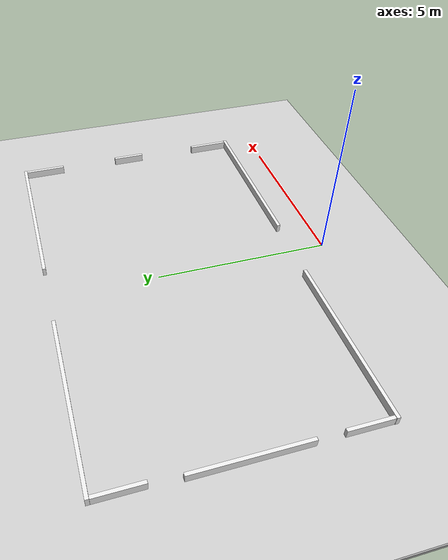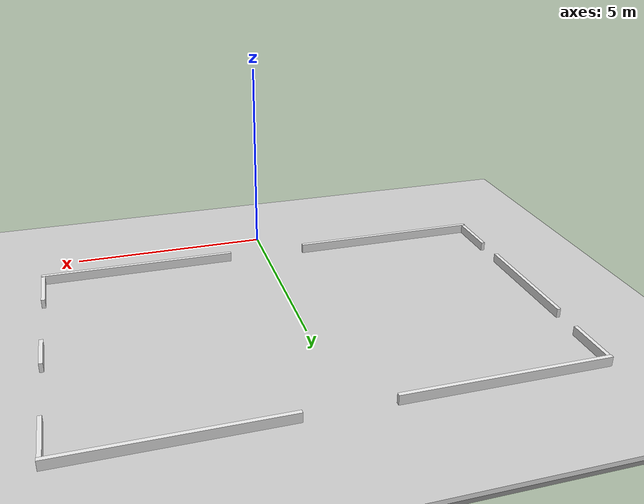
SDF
<sdf version="1.6">
 <world name="default">
  <plugin name="main" filename="3omni/build/libmain.so"/>
  <light name="sun" type="directional">
   <pose>0 0 10 0 -0 0</pose>
   <diffuse>0.8 0.8 0.8 1</diffuse>
   <specular>0.2 0.2 0.2 1</specular>
   <attenuation>
    <range>1000</range>
    <constant>0.9</constant>
    <linear>0.01</linear>
    <quadratic>0.001</quadratic>
   </attenuation>
   <direction>-0.5 0.1 -0.9</direction>
  </light>
  <model name="ground_plane">
   <static>1</static>
   <link name="link">
    <collision name="collision">
     <geometry><plane><normal>0 0 1</normal><size>100 100</size></plane></geometry>
     <surface>
      <contact><collide_bitmask>65535</collide_bitmask></contact>
      <friction><ode><mu>100</mu><mu2>50</mu2></ode></friction>
     </surface>
    </collision>
    <visual name="visual">
     <cast_shadows>0</cast_shadows>
     <geometry><plane><normal>0 0 1</normal><size>100 100</size></plane></geometry>
     <material>
      <script><uri>file://media/materials/scripts/gazebo.material</uri><name>Gazebo/Grey</name></script>
     </material>
    </visual>
   </link>
  </model>
  <gravity>0 0 -9.8</gravity>
  <magnetic_field>6e-06 2.3e-05 -4.2e-05</magnetic_field>
  <atmosphere type="adiabatic"/>
  <physics name="default_physics" default="0" type="ode">
   <max_step_size>0.01</max_step_size>
   <real_time_factor>1</real_time_factor>
   <real_time_update_rate>1000</real_time_update_rate>
  </physics>
  <scene><ambient>0.4 0.4 0.4 1</ambient><background>0.7 0.7 0.7 1</background><shadows>1</shadows></scene>
  <audio><device>default</device></audio>
  <spherical_coordinates>
   <surface_model>EARTH_WGS84</surface_model>
   <latitude_deg>0</latitude_deg>
   <longitude_deg>0</longitude_deg>
   <elevation>0</elevation>
   <heading_deg>0</heading_deg>
  </spherical_coordinates>
  <model name="blueprint">
   <link name="link_0_clone_1">
    <inertial>
     <mass>0.0001</mass>
     <inertia>
      <ixx>0.00309729</ixx>
      <ixy>0</ixy>
      <ixz>0</ixz>
      <iyy>0.415029</iyy>
      <iyz>0</iyz>
      <izz>0.412229</izz>
     </inertia>
    </inertial>
    <pose>3.48107 -2.97899 0.015598 0 -0 0</pose>
    <visual name="visual">
     <geometry><box><size>4.98576 0.094728 0.421739</size></box></geometry>
     <material>
      <lighting>1</lighting>
      <script><uri>file://media/materials/scripts/gazebo.material</uri><name>Gazebo/White</name></script>
      <shader type="pixel"/>
      <emissive>0 0 0 1</emissive>
     </material>
    </visual>
    <collision name="collision">
     <geometry><box><size>4.98576 0.094728 0.421739</size></box></geometry>
     <surface>
      <friction>
       <ode><mu>1</mu><mu2>1</mu2><fdir1>0 0 0</fdir1><slip1>0</slip1><slip2>0</slip2></ode>
       <torsional>
        <coefficient>1</coefficient>
        <patch_radius>0</patch_radius>
        <surface_radius>0</surface_radius>
        <use_patch_radius>1</use_patch_radius>
        <ode><slip>0</slip></ode>
       </torsional>
      </friction>
      <bounce><restitution_coefficient>0</restitution_coefficient><threshold>1e+06</threshold></bounce>
      <contact>
       <collide_without_contact>0</collide_without_contact>
       <collide_without_contact_bitmask>1</collide_without_contact_bitmask>
       <collide_bitmask>1</collide_bitmask>
       <ode>
        <soft_cfm>0</soft_cfm>
        <soft_erp>0.2</soft_erp>
        <kp>1e+13</kp>
        <kd>1</kd>
        <max_vel>0.01</max_vel>
        <min_depth>0</min_depth>
       </ode>
       <bullet>
        <split_impulse>1</split_impulse>
        <split_impulse_penetration_threshold>-0.01</split_impulse_penetration_threshold>
        <soft_cfm>0</soft_cfm>
        <soft_erp>0.2</soft_erp>
        <kp>1e+13</kp>
        <kd>1</kd>
       </bullet>
      </contact>
     </surface>
    </collision>
   </link>
   <link name="link_0_clone_1_clone">
    <inertial>
     <mass>0.0001</mass>
     <inertia>
      <ixx>0.00309729</ixx>
      <ixy>0</ixy>
      <ixz>0</ixz>
      <iyy>0.415029</iyy>
      <iyz>0</iyz>
      <izz>0.412229</izz>
     </inertia>
    </inertial>
    <pose>3.48028 4.0921 0.015598 0 -0 0</pose>
    <visual name="visual">
     <geometry><box><size>4.98576 0.094728 0.421739</size></box></geometry>
     <material>
      <lighting>1</lighting>
      <script><uri>file://media/materials/scripts/gazebo.material</uri><name>Gazebo/White</name></script>
      <shader type="pixel"/>
      <emissive>0 0 0 1</emissive>
     </material>
    </visual>
    <collision name="collision">
     <geometry><box><size>4.98576 0.094728 0.421739</size></box></geometry>
     <surface>
      <friction>
       <ode><mu>1</mu><mu2>1</mu2><fdir1>0 0 0</fdir1><slip1>0</slip1><slip2>0</slip2></ode>
       <torsional>
        <coefficient>1</coefficient>
        <patch_radius>0</patch_radius>
        <surface_radius>0</surface_radius>
        <use_patch_radius>1</use_patch_radius>
        <ode><slip>0</slip></ode>
       </torsional>
      </friction>
      <bounce><restitution_coefficient>0</restitution_coefficient><threshold>1e+06</threshold></bounce>
      <contact>
       <collide_without_contact>0</collide_without_contact>
       <collide_without_contact_bitmask>1</collide_without_contact_bitmask>
       <collide_bitmask>1</collide_bitmask>
       <ode>
        <soft_cfm>0</soft_cfm>
        <soft_erp>0.2</soft_erp>
        <kp>1e+13</kp>
        <kd>1</kd>
        <max_vel>0.01</max_vel>
        <min_depth>0</min_depth>
       </ode>
       <bullet>
        <split_impulse>1</split_impulse>
        <split_impulse_penetration_threshold>-0.01</split_impulse_penetration_threshold>
        <soft_cfm>0</soft_cfm>
        <soft_erp>0.2</soft_erp>
        <kp>1e+13</kp>
        <kd>1</kd>
       </bullet>
      </contact>
     </surface>
    </collision>
   </link>
   <link name="link_0_clone_1_clone_0">
    <inertial>
     <mass>0.0001</mass>
     <inertia>
      <ixx>0.00309729</ixx>
      <ixy>0</ixy>
      <ixz>0</ixz>
      <iyy>0.415029</iyy>
      <iyz>0</iyz>
      <izz>0.412229</izz>
     </inertia>
    </inertial>
    <pose>-3.52662 -2.91633 0.015598 0 -0 0</pose>
    <visual name="visual">
     <geometry><box><size>4.98576 0.094728 0.421739</size></box></geometry>
     <material>
      <lighting>1</lighting>
      <script><uri>file://media/materials/scripts/gazebo.material</uri><name>Gazebo/White</name></script>
      <shader type="pixel"/>
      <emissive>0 0 0 1</emissive>
     </material>
    </visual>
    <collision name="collision">
     <geometry><box><size>4.98576 0.094728 0.421739</size></box></geometry>
     <surface>
      <friction>
       <ode><mu>1</mu><mu2>1</mu2><fdir1>0 0 0</fdir1><slip1>0</slip1><slip2>0</slip2></ode>
       <torsional>
        <coefficient>1</coefficient>
        <patch_radius>0</patch_radius>
        <surface_radius>0</surface_radius>
        <use_patch_radius>1</use_patch_radius>
        <ode><slip>0</slip></ode>
       </torsional>
      </friction>
      <bounce><restitution_coefficient>0</restitution_coefficient><threshold>1e+06</threshold></bounce>
      <contact>
       <collide_without_contact>0</collide_without_contact>
       <collide_without_contact_bitmask>1</collide_without_contact_bitmask>
       <collide_bitmask>1</collide_bitmask>
       <ode>
        <soft_cfm>0</soft_cfm>
        <soft_erp>0.2</soft_erp>
        <kp>1e+13</kp>
        <kd>1</kd>
        <max_vel>0.01</max_vel>
        <min_depth>0</min_depth>
       </ode>
       <bullet>
        <split_impulse>1</split_impulse>
        <split_impulse_penetration_threshold>-0.01</split_impulse_penetration_threshold>
        <soft_cfm>0</soft_cfm>
        <soft_erp>0.2</soft_erp>
        <kp>1e+13</kp>
        <kd>1</kd>
       </bullet>
      </contact>
     </surface>
    </collision>
   </link>
   <link name="link_0_clone_1_clone_clone">
    <inertial>
     <mass>0.0001</mass>
     <inertia>
      <ixx>0.00309729</ixx>
      <ixy>0</ixy>
      <ixz>0</ixz>
      <iyy>0.415029</iyy>
      <iyz>0</iyz>
      <izz>0.412229</izz>
     </inertia>
    </inertial>
    <pose>-3.51109 4.10317 0.015598 0 -0 0</pose>
    <visual name="visual">
     <geometry><box><size>4.98576 0.094728 0.421739</size></box></geometry>
     <material>
      <lighting>1</lighting>
      <script><uri>file://media/materials/scripts/gazebo.material</uri><name>Gazebo/White</name></script>
      <shader type="pixel"/>
      <emissive>0 0 0 1</emissive>
     </material>
    </visual>
    <collision name="collision">
     <geometry><box><size>4.98576 0.094728 0.421739</size></box></geometry>
     <surface>
      <friction>
       <ode><mu>1</mu><mu2>1</mu2><fdir1>0 0 0</fdir1><slip1>0</slip1><slip2>0</slip2></ode>
       <torsional>
        <coefficient>1</coefficient>
        <patch_radius>0</patch_radius>
        <surface_radius>0</surface_radius>
        <use_patch_radius>1</use_patch_radius>
        <ode><slip>0</slip></ode>
       </torsional>
      </friction>
      <bounce><restitution_coefficient>0</restitution_coefficient><threshold>1e+06</threshold></bounce>
      <contact>
       <collide_without_contact>0</collide_without_contact>
       <collide_without_contact_bitmask>1</collide_without_contact_bitmask>
       <collide_bitmask>1</collide_bitmask>
       <ode>
        <soft_cfm>0</soft_cfm>
        <soft_erp>0.2</soft_erp>
        <kp>1e+13</kp>
        <kd>1</kd>
        <max_vel>0.01</max_vel>
        <min_depth>0</min_depth>
       </ode>
       <bullet>
        <split_impulse>1</split_impulse>
        <split_impulse_penetration_threshold>-0.01</split_impulse_penetration_threshold>
        <soft_cfm>0</soft_cfm>
        <soft_erp>0.2</soft_erp>
        <kp>1e+13</kp>
        <kd>1</kd>
       </bullet>
      </contact>
     </surface>
    </collision>
   </link>
   <link name="link_0_clone_clone_1">
    <inertial>
     <mass>0.0001</mass>
     <inertia>
      <ixx>0.000621208</ixx>
      <ixy>0</ixy>
      <ixz>0</ixz>
      <iyy>0.00619212</iyy>
      <iyz>0</iyz>
      <izz>0.00563879</izz>
     </inertia>
    </inertial>
    <pose>5.92227 -2.32231 0.019338 0 0 -1.5637</pose>
    <visual name="visual">
     <geometry><box><size>1.21731 0.094728 0.394038</size></box></geometry>
     <material>
      <lighting>1</lighting>
      <script><uri>file://media/materials/scripts/gazebo.material</uri><name>Gazebo/White</name></script>
      <shader type="vertex"><normal_map>__default__</normal_map></shader>
      <emissive>0 0 0 1</emissive>
     </material>
    </visual>
    <collision name="collision">
     <geometry><box><size>1.21731 0.094728 0.394038</size></box></geometry>
     <surface>
      <friction>
       <ode><mu>1</mu><mu2>1</mu2><fdir1>0 0 0</fdir1><slip1>0</slip1><slip2>0</slip2></ode>
       <torsional>
        <coefficient>1</coefficient>
        <patch_radius>0</patch_radius>
        <surface_radius>0</surface_radius>
        <use_patch_radius>1</use_patch_radius>
        <ode><slip>0</slip></ode>
       </torsional>
      </friction>
      <bounce><restitution_coefficient>0</restitution_coefficient><threshold>1e+06</threshold></bounce>
      <contact>
       <collide_without_contact>0</collide_without_contact>
       <collide_without_contact_bitmask>1</collide_without_contact_bitmask>
       <collide_bitmask>1</collide_bitmask>
       <ode>
        <soft_cfm>0</soft_cfm>
        <soft_erp>0.2</soft_erp>
        <kp>1e+13</kp>
        <kd>1</kd>
        <max_vel>0.01</max_vel>
        <min_depth>0</min_depth>
       </ode>
       <bullet>
        <split_impulse>1</split_impulse>
        <split_impulse_penetration_threshold>-0.01</split_impulse_penetration_threshold>
        <soft_cfm>0</soft_cfm>
        <soft_erp>0.2</soft_erp>
        <kp>1e+13</kp>
        <kd>1</kd>
       </bullet>
      </contact>
     </surface>
    </collision>
   </link>
   <link name="link_0_clone_clone_1_clone">
    <inertial>
     <mass>0.0001</mass>
     <inertia>
      <ixx>0.000621208</ixx>
      <ixy>0</ixy>
      <ixz>0</ixz>
      <iyy>0.00619212</iyy>
      <iyz>0</iyz>
      <izz>0.00563879</izz>
     </inertia>
    </inertial>
    <pose>-5.96782 -2.26025 0.019338 0 0 -1.5637</pose>
    <visual name="visual">
     <geometry><box><size>1.21731 0.094728 0.394038</size></box></geometry>
     <material>
      <lighting>1</lighting>
      <script><uri>file://media/materials/scripts/gazebo.material</uri><name>Gazebo/White</name></script>
      <shader type="vertex"><normal_map>__default__</normal_map></shader>
      <emissive>0 0 0 1</emissive>
     </material>
    </visual>
    <collision name="collision">
     <geometry><box><size>1.21731 0.094728 0.394038</size></box></geometry>
     <surface>
      <friction>
       <ode><mu>1</mu><mu2>1</mu2><fdir1>0 0 0</fdir1><slip1>0</slip1><slip2>0</slip2></ode>
       <torsional>
        <coefficient>1</coefficient>
        <patch_radius>0</patch_radius>
        <surface_radius>0</surface_radius>
        <use_patch_radius>1</use_patch_radius>
        <ode><slip>0</slip></ode>
       </torsional>
      </friction>
      <bounce><restitution_coefficient>0</restitution_coefficient><threshold>1e+06</threshold></bounce>
      <contact>
       <collide_without_contact>0</collide_without_contact>
       <collide_without_contact_bitmask>1</collide_without_contact_bitmask>
       <collide_bitmask>1</collide_bitmask>
       <ode>
        <soft_cfm>0</soft_cfm>
        <soft_erp>0.2</soft_erp>
        <kp>1e+13</kp>
        <kd>1</kd>
        <max_vel>0.01</max_vel>
        <min_depth>0</min_depth>
       </ode>
       <bullet>
        <split_impulse>1</split_impulse>
        <split_impulse_penetration_threshold>-0.01</split_impulse_penetration_threshold>
        <soft_cfm>0</soft_cfm>
        <soft_erp>0.2</soft_erp>
        <kp>1e+13</kp>
        <kd>1</kd>
       </bullet>
      </contact>
     </surface>
    </collision>
   </link>
   <link name="link_0_clone_clone_1_clone_0">
    <inertial>
     <mass>0.0001</mass>
     <inertia>
      <ixx>0.000489719</ixx>
      <ixy>0</ixy>
      <ixz>0</ixz>
      <iyy>0.00320892</iyy>
      <iyz>0</iyz>
      <izz>0.00277272</izz>
     </inertia>
    </inertial>
    <pose>5.93722 0.55998 0.019338 0 0 -1.5637</pose>
    <visual name="visual">
     <geometry><box><size>0.959649 0.094728 0.394038</size></box></geometry>
     <material>
      <lighting>1</lighting>
      <script><uri>file://media/materials/scripts/gazebo.material</uri><name>Gazebo/White</name></script>
      <shader type="vertex"><normal_map>__default__</normal_map></shader>
     </material>
    </visual>
    <collision name="collision">
     <geometry><box><size>0.959649 0.094728 0.394038</size></box></geometry>
     <surface>
      <friction>
       <ode><mu>1</mu><mu2>1</mu2><fdir1>0 0 0</fdir1><slip1>0</slip1><slip2>0</slip2></ode>
       <torsional>
        <coefficient>1</coefficient>
        <patch_radius>0</patch_radius>
        <surface_radius>0</surface_radius>
        <use_patch_radius>1</use_patch_radius>
        <ode><slip>0</slip></ode>
       </torsional>
      </friction>
      <bounce><restitution_coefficient>0</restitution_coefficient><threshold>1e+06</threshold></bounce>
      <contact>
       <collide_without_contact>0</collide_without_contact>
       <collide_without_contact_bitmask>1</collide_without_contact_bitmask>
       <collide_bitmask>1</collide_bitmask>
       <ode>
        <soft_cfm>0</soft_cfm>
        <soft_erp>0.2</soft_erp>
        <kp>1e+13</kp>
        <kd>1</kd>
        <max_vel>0.01</max_vel>
        <min_depth>0</min_depth>
       </ode>
       <bullet>
        <split_impulse>1</split_impulse>
        <split_impulse_penetration_threshold>-0.01</split_impulse_penetration_threshold>
        <soft_cfm>0</soft_cfm>
        <soft_erp>0.2</soft_erp>
        <kp>1e+13</kp>
        <kd>1</kd>
       </bullet>
      </contact>
     </surface>
    </collision>
   </link>
   <link name="link_0_clone_clone_1_clone_1">
    <inertial>
     <mass>0.0001</mass>
     <inertia>
      <ixx>0.000621208</ixx>
      <ixy>0</ixy>
      <ixz>0</ixz>
      <iyy>0.00619212</iyy>
      <iyz>0</iyz>
      <izz>0.00563879</izz>
     </inertia>
    </inertial>
    <pose>5.92147 3.43729 0.019338 0 0 -1.5637</pose>
    <visual name="visual">
     <geometry><box><size>1.21731 0.094728 0.394038</size></box></geometry>
     <material>
      <lighting>1</lighting>
      <script><uri>file://media/materials/scripts/gazebo.material</uri><name>Gazebo/White</name></script>
      <shader type="vertex"><normal_map>__default__</normal_map></shader>
      <emissive>0 0 0 1</emissive>
     </material>
    </visual>
    <collision name="collision">
     <geometry><box><size>1.21731 0.094728 0.394038</size></box></geometry>
     <surface>
      <friction>
       <ode><mu>1</mu><mu2>1</mu2><fdir1>0 0 0</fdir1><slip1>0</slip1><slip2>0</slip2></ode>
       <torsional>
        <coefficient>1</coefficient>
        <patch_radius>0</patch_radius>
        <surface_radius>0</surface_radius>
        <use_patch_radius>1</use_patch_radius>
        <ode><slip>0</slip></ode>
       </torsional>
      </friction>
      <bounce><restitution_coefficient>0</restitution_coefficient><threshold>1e+06</threshold></bounce>
      <contact>
       <collide_without_contact>0</collide_without_contact>
       <collide_without_contact_bitmask>1</collide_without_contact_bitmask>
       <collide_bitmask>1</collide_bitmask>
       <ode>
        <soft_cfm>0</soft_cfm>
        <soft_erp>0.2</soft_erp>
        <kp>1e+13</kp>
        <kd>1</kd>
        <max_vel>0.01</max_vel>
        <min_depth>0</min_depth>
       </ode>
       <bullet>
        <split_impulse>1</split_impulse>
        <split_impulse_penetration_threshold>-0.01</split_impulse_penetration_threshold>
        <soft_cfm>0</soft_cfm>
        <soft_erp>0.2</soft_erp>
        <kp>1e+13</kp>
        <kd>1</kd>
       </bullet>
      </contact>
     </surface>
    </collision>
   </link>
   <link name="link_0_clone_clone_1_clone_clone">
    <inertial>
     <mass>0.0001</mass>
     <inertia>
      <ixx>0.00154339</ixx>
      <ixy>0</ixy>
      <ixz>0</ixz>
      <iyy>0.0874153</iyy>
      <iyz>0</iyz>
      <izz>0.0860405</izz>
     </inertia>
    </inertial>
    <pose>-5.9956 0.55872 0.019338 0 0 -1.5637</pose>
    <visual name="visual">
     <geometry><box><size>3.02441 0.094728 0.394038</size></box></geometry>
     <material>
      <lighting>1</lighting>
      <script><uri>file://media/materials/scripts/gazebo.material</uri><name>Gazebo/White</name></script>
      <shader type="vertex"><normal_map>__default__</normal_map></shader>
     </material>
    </visual>
    <collision name="collision">
     <geometry><box><size>3.02441 0.094728 0.394038</size></box></geometry>
     <surface>
      <friction>
       <ode><mu>1</mu><mu2>1</mu2><fdir1>0 0 0</fdir1><slip1>0</slip1><slip2>0</slip2></ode>
       <torsional>
        <coefficient>1</coefficient>
        <patch_radius>0</patch_radius>
        <surface_radius>0</surface_radius>
        <use_patch_radius>1</use_patch_radius>
        <ode><slip>0</slip></ode>
       </torsional>
      </friction>
      <bounce><restitution_coefficient>0</restitution_coefficient><threshold>1e+06</threshold></bounce>
      <contact>
       <collide_without_contact>0</collide_without_contact>
       <collide_without_contact_bitmask>1</collide_without_contact_bitmask>
       <collide_bitmask>1</collide_bitmask>
       <ode>
        <soft_cfm>0</soft_cfm>
        <soft_erp>0.2</soft_erp>
        <kp>1e+13</kp>
        <kd>1</kd>
        <max_vel>0.01</max_vel>
        <min_depth>0</min_depth>
       </ode>
       <bullet>
        <split_impulse>1</split_impulse>
        <split_impulse_penetration_threshold>-0.01</split_impulse_penetration_threshold>
        <soft_cfm>0</soft_cfm>
        <soft_erp>0.2</soft_erp>
        <kp>1e+13</kp>
        <kd>1</kd>
       </bullet>
      </contact>
     </surface>
    </collision>
   </link>
   <link name="link_0_clone_clone_1_clone_clone_0">
    <inertial>
     <mass>0.0001</mass>
     <inertia>
      <ixx>0.000621208</ixx>
      <ixy>0</ixy>
      <ixz>0</ixz>
      <iyy>0.00619212</iyy>
      <iyz>0</iyz>
      <izz>0.00563879</izz>
     </inertia>
    </inertial>
    <pose>-5.95228 3.44568 0.019338 0 0 -1.5637</pose>
    <visual name="visual">
     <geometry><box><size>1.21731 0.094728 0.394038</size></box></geometry>
     <material>
      <lighting>1</lighting>
      <script><uri>file://media/materials/scripts/gazebo.material</uri><name>Gazebo/White</name></script>
      <shader type="vertex"><normal_map>__default__</normal_map></shader>
      <emissive>0 0 0 1</emissive>
     </material>
    </visual>
    <collision name="collision">
     <geometry><box><size>1.21731 0.094728 0.394038</size></box></geometry>
     <surface>
      <friction>
       <ode><mu>1</mu><mu2>1</mu2><fdir1>0 0 0</fdir1><slip1>0</slip1><slip2>0</slip2></ode>
       <torsional>
        <coefficient>1</coefficient>
        <patch_radius>0</patch_radius>
        <surface_radius>0</surface_radius>
        <use_patch_radius>1</use_patch_radius>
        <ode><slip>0</slip></ode>
       </torsional>
      </friction>
      <bounce><restitution_coefficient>0</restitution_coefficient><threshold>1e+06</threshold></bounce>
      <contact>
       <collide_without_contact>0</collide_without_contact>
       <collide_without_contact_bitmask>1</collide_without_contact_bitmask>
       <collide_bitmask>1</collide_bitmask>
       <ode>
        <soft_cfm>0</soft_cfm>
        <soft_erp>0.2</soft_erp>
        <kp>1e+13</kp>
        <kd>1</kd>
        <max_vel>0.01</max_vel>
        <min_depth>0</min_depth>
       </ode>
       <bullet>
        <split_impulse>1</split_impulse>
        <split_impulse_penetration_threshold>-0.01</split_impulse_penetration_threshold>
        <soft_cfm>0</soft_cfm>
        <soft_erp>0.2</soft_erp>
        <kp>1e+13</kp>
        <kd>1</kd>
       </bullet>
      </contact>
     </surface>
    </collision>
   </link>
   <model name="ground_plane">
    <static>1</static>
    <link name="link">
     <collision name="collision">
      <geometry><plane><normal>0 0 1</normal><size>100 100</size></plane></geometry>
      <surface>
       <contact><collide_bitmask>65535</collide_bitmask></contact>
       <friction><ode><mu>100</mu><mu2>50</mu2></ode></friction>
      </surface>
     </collision>
     <visual name="visual">
      <cast_shadows>0</cast_shadows>
      <geometry><plane><normal>0 0 1</normal><size>100 100</size></plane></geometry>
      <material>
       <script><uri>file://media/materials/scripts/gazebo.material</uri><name>Gazebo/Grey</name></script>
      </material>
     </visual>
     <velocity_decay><linear>0</linear><angular>0</angular></velocity_decay>
    </link>
    <pose>0.211121 -5.71906 -0.178422 0 -0 0</pose>
   </model>
   <static>0</static>
   <pose>-0.010051 3.96927 0 0 -0 0</pose>
  </model>
 </world>
</sdf>
